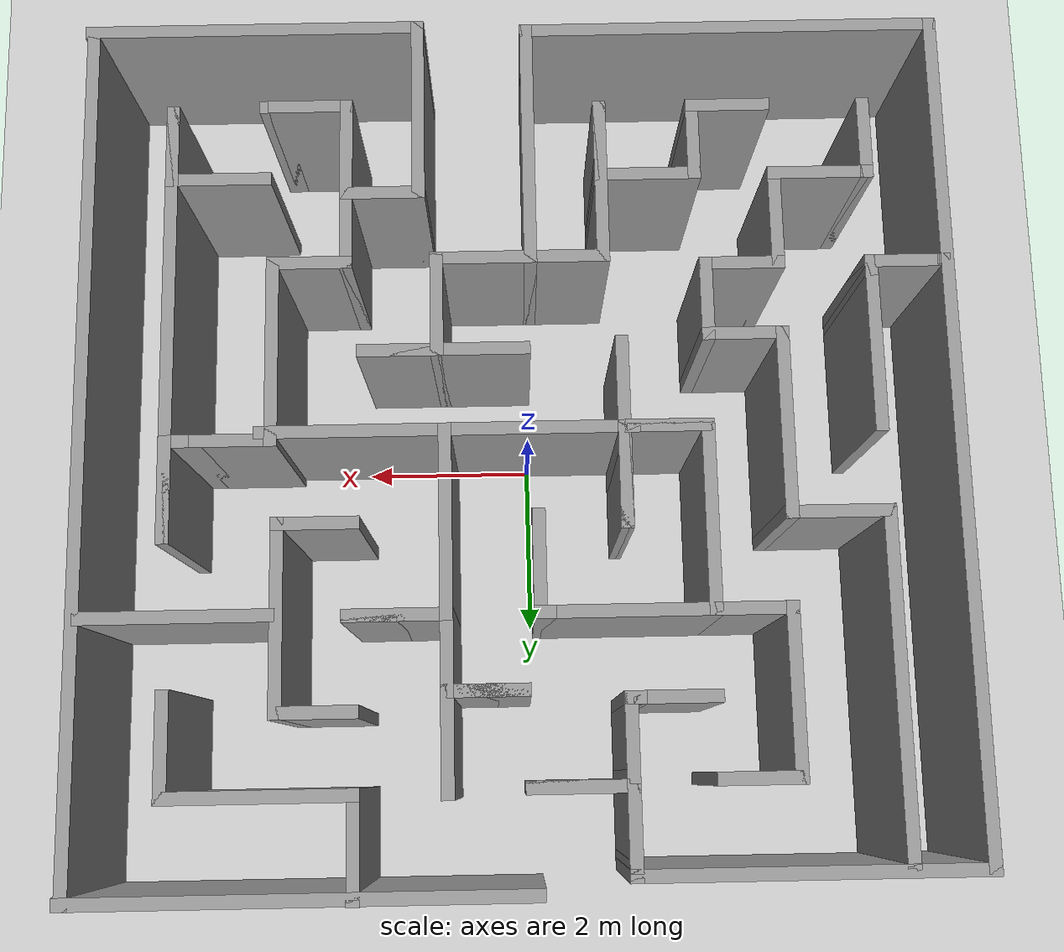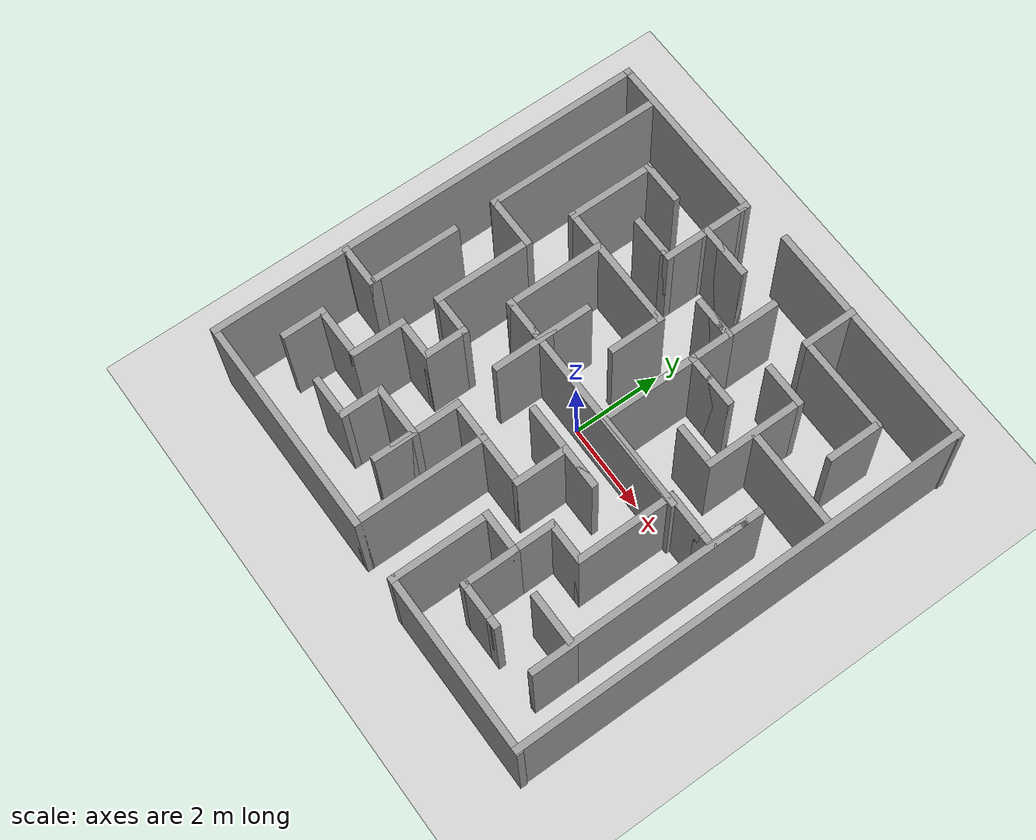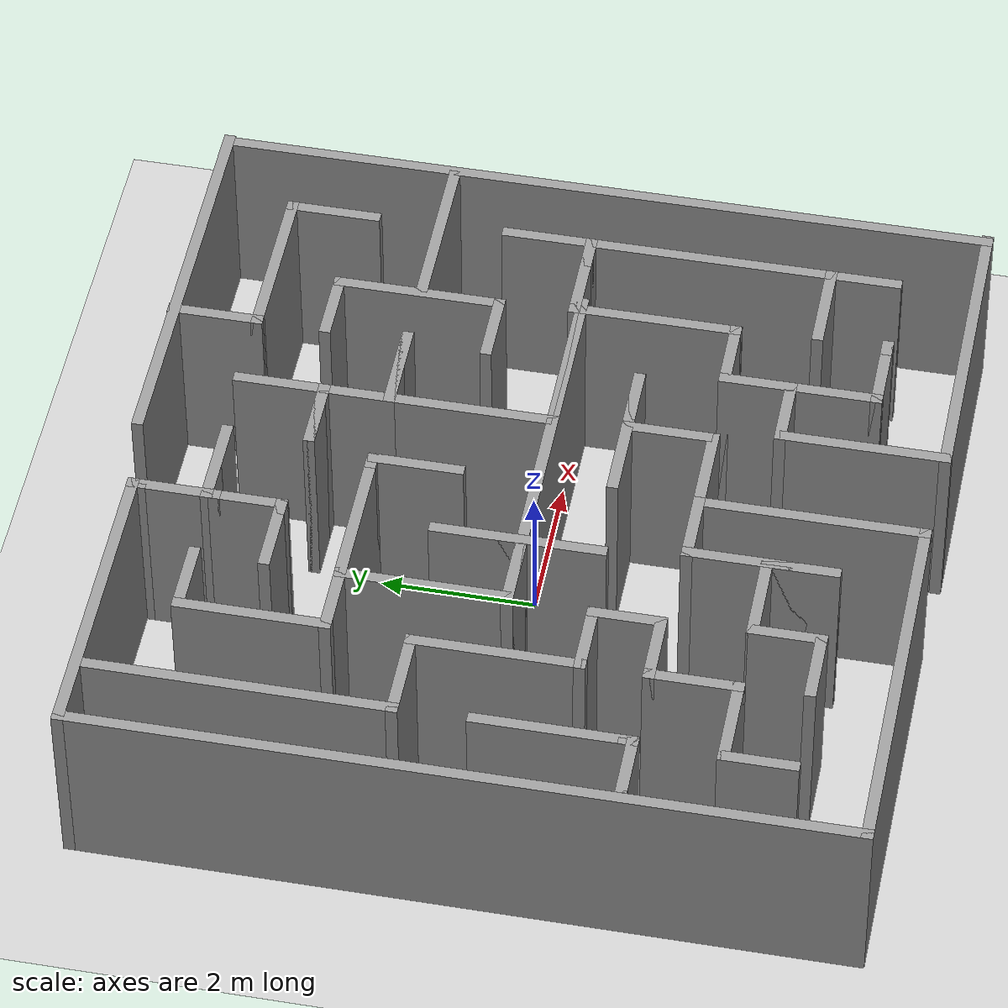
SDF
<sdf version="1.7">
 <world name="default">
  <light name="sun" type="directional">
   <pose>0 0 10 0 -0 0</pose>
   <diffuse>0.8 0.8 0.8 1</diffuse>
   <specular>0.2 0.2 0.2 1</specular>
   <attenuation>
    <range>1000</range>
    <constant>0.9</constant>
    <linear>0.01</linear>
    <quadratic>0.001</quadratic>
   </attenuation>
   <direction>-0.5 0.1 -0.9</direction>
   <spot><inner_angle>0</inner_angle><outer_angle>0</outer_angle><falloff>0</falloff></spot>
  </light>
  <model name="ground_plane">
   <static>1</static>
   <link name="link">
    <collision name="collision">
     <geometry><plane><normal>0 0 1</normal><size>100 100</size></plane></geometry>
     <surface><friction><ode><mu>100</mu><mu2>50</mu2></ode></friction></surface>
    </collision>
    <visual name="visual">
     <cast_shadows>0</cast_shadows>
     <geometry><plane><normal>0 0 1</normal><size>100 100</size></plane></geometry>
     <material>
      <script><uri>file://media/materials/scripts/gazebo.material</uri><name>Gazebo/Grey</name></script>
     </material>
    </visual>
   </link>
  </model>
  <gravity>0 0 -9.8</gravity>
  <magnetic_field>6e-06 2.3e-05 -4.2e-05</magnetic_field>
  <atmosphere type="adiabatic"/>
  <physics type="ode">
   <max_step_size>0.001</max_step_size>
   <real_time_factor>1</real_time_factor>
   <real_time_update_rate>1000</real_time_update_rate>
  </physics>
  <scene><ambient>0.4 0.4 0.4 1</ambient><background>0.7 0.7 0.7 1</background><shadows>1</shadows></scene>
  <audio><device>default</device></audio>
  <spherical_coordinates>
   <surface_model>EARTH_WGS84</surface_model>
   <latitude_deg>0</latitude_deg>
   <longitude_deg>0</longitude_deg>
   <elevation>0</elevation>
   <heading_deg>0</heading_deg>
  </spherical_coordinates>
  <model name="turtlebot3_maze">
   <pose>0.108086 0.039405 0 0 -0 0</pose>
   <link name="Wall_0">
    <collision name="Wall_0_Collision">
     <geometry><box><size>5.3029 0.15 2.5</size></box></geometry>
     <pose>0 0 1.25 0 -0 0</pose>
    </collision>
    <visual name="Wall_0_Visual">
     <pose>0 0 1.25 0 -0 0</pose>
     <geometry><box><size>5.3029 0.15 2.5</size></box></geometry>
     <material>
      <script><uri>file://media/materials/scripts/gazebo.material</uri><name>Gazebo/Grey</name></script>
      <ambient>1 1 1 1</ambient>
     </material>
     <meta><layer>0</layer></meta>
    </visual>
    <pose>2.45024 5.04418 0 0 -0 0</pose>
   </link>
   <link name="Wall_1">
    <collision name="Wall_1_Collision">
     <geometry><box><size>10.25 0.15 2.5</size></box></geometry>
     <pose>0 0 1.25 0 -0 0</pose>
    </collision>
    <visual name="Wall_1_Visual">
     <pose>0 0 1.25 0 -0 0</pose>
     <geometry><box><size>10.25 0.15 2.5</size></box></geometry>
     <material>
      <script><uri>file://media/materials/scripts/gazebo.material</uri><name>Gazebo/Grey</name></script>
      <ambient>1 1 1 1</ambient>
     </material>
     <meta><layer>0</layer></meta>
    </visual>
    <pose>5.00025 -0.005817 0 0 -0 -1.5708</pose>
   </link>
   <link name="Wall_10">
    <collision name="Wall_10_Collision">
     <geometry><box><size>1 0.15 2.5</size></box></geometry>
     <pose>0 0 1.25 0 -0 0</pose>
    </collision>
    <visual name="Wall_10_Visual">
     <pose>0 0 1.25 0 -0 0</pose>
     <geometry><box><size>1 0.15 2.5</size></box></geometry>
     <material>
      <script><uri>file://media/materials/scripts/gazebo.material</uri><name>Gazebo/Grey</name></script>
      <ambient>1 1 1 1</ambient>
     </material>
     <meta><layer>0</layer></meta>
    </visual>
    <pose>2.39879 -4.05582 0 0 -0 0</pose>
   </link>
   <link name="Wall_100">
    <collision name="Wall_100_Collision">
     <geometry><box><size>4 0.15 2.5</size></box></geometry>
     <pose>0 0 1.25 0 -0 0</pose>
    </collision>
    <visual name="Wall_100_Visual">
     <pose>0 0 1.25 0 -0 0</pose>
     <geometry><box><size>4 0.15 2.5</size></box></geometry>
     <material>
      <script><uri>file://media/materials/scripts/gazebo.material</uri><name>Gazebo/Grey</name></script>
      <ambient>1 1 1 1</ambient>
     </material>
     <meta><layer>0</layer></meta>
    </visual>
    <pose>-4.15984 2.86132 0 0 -0 1.5708</pose>
   </link>
   <link name="Wall_11">
    <collision name="Wall_11_Collision">
     <geometry><box><size>0.25 0.15 2.5</size></box></geometry>
     <pose>0 0 1.25 0 -0 0</pose>
    </collision>
    <visual name="Wall_11_Visual">
     <pose>0 0 1.25 0 -0 0</pose>
     <geometry><box><size>0.25 0.15 2.5</size></box></geometry>
     <material>
      <script><uri>file://media/materials/scripts/gazebo.material</uri><name>Gazebo/Grey</name></script>
      <ambient>1 1 1 1</ambient>
     </material>
     <meta><layer>0</layer></meta>
    </visual>
    <pose>2.8738 -4.05582 0 0 -0 0</pose>
   </link>
   <link name="Wall_13">
    <collision name="Wall_13_Collision">
     <geometry><box><size>1 0.15 2.5</size></box></geometry>
     <pose>0 0 1.25 0 -0 0</pose>
    </collision>
    <visual name="Wall_13_Visual">
     <pose>0 0 1.25 0 -0 0</pose>
     <geometry><box><size>1 0.15 2.5</size></box></geometry>
     <material>
      <script><uri>file://media/materials/scripts/gazebo.material</uri><name>Gazebo/Grey</name></script>
      <ambient>1 1 1 1</ambient>
     </material>
     <meta><layer>0</layer></meta>
    </visual>
    <pose>1.97379 -2.53082 0 0 -0 1.5708</pose>
   </link>
   <link name="Wall_14">
    <collision name="Wall_14_Collision">
     <geometry><box><size>1 0.15 2.5</size></box></geometry>
     <pose>0 0 1.25 0 -0 0</pose>
    </collision>
    <visual name="Wall_14_Visual">
     <pose>0 0 1.25 0 -0 0</pose>
     <geometry><box><size>1 0.15 2.5</size></box></geometry>
     <material>
      <script><uri>file://media/materials/scripts/gazebo.material</uri><name>Gazebo/Grey</name></script>
      <ambient>1 1 1 1</ambient>
     </material>
     <meta><layer>0</layer></meta>
    </visual>
    <pose>2.39879 -2.10582 0 0 -0 0</pose>
   </link>
   <link name="Wall_15">
    <collision name="Wall_15_Collision">
     <geometry><box><size>2.25 0.15 2.5</size></box></geometry>
     <pose>0 0 1.25 0 -0 0</pose>
    </collision>
    <visual name="Wall_15_Visual">
     <pose>0 0 1.25 0 -0 0</pose>
     <geometry><box><size>2.25 0.15 2.5</size></box></geometry>
     <material>
      <script><uri>file://media/materials/scripts/gazebo.material</uri><name>Gazebo/Grey</name></script>
      <ambient>1 1 1 1</ambient>
     </material>
     <meta><layer>0</layer></meta>
    </visual>
    <pose>2.8238 -1.05582 0 0 -0 1.5708</pose>
   </link>
   <link name="Wall_16">
    <collision name="Wall_16_Collision">
     <geometry><box><size>1 0.15 2.5</size></box></geometry>
     <pose>0 0 1.25 0 -0 0</pose>
    </collision>
    <visual name="Wall_16_Visual">
     <pose>0 0 1.25 0 -0 0</pose>
     <geometry><box><size>1 0.15 2.5</size></box></geometry>
     <material>
      <script><uri>file://media/materials/scripts/gazebo.material</uri><name>Gazebo/Grey</name></script>
      <ambient>1 1 1 1</ambient>
     </material>
     <meta><layer>0</layer></meta>
    </visual>
    <pose>3.2488 -0.005817 0 0 -0 0</pose>
   </link>
   <link name="Wall_17">
    <collision name="Wall_17_Collision">
     <geometry><box><size>0.5 0.15 2.5</size></box></geometry>
     <pose>0 0 1.25 0 -0 0</pose>
    </collision>
    <visual name="Wall_17_Visual">
     <pose>0 0 1.25 0 -0 0</pose>
     <geometry><box><size>0.5 0.15 2.5</size></box></geometry>
     <material>
      <script><uri>file://media/materials/scripts/gazebo.material</uri><name>Gazebo/Grey</name></script>
      <ambient>1 1 1 1</ambient>
     </material>
     <meta><layer>0</layer></meta>
    </visual>
    <pose>3.84879 -0.005817 0 0 -0 0</pose>
   </link>
   <link name="Wall_18">
    <collision name="Wall_18_Collision">
     <geometry><box><size>1.25 0.15 2.5</size></box></geometry>
     <pose>0 0 1.25 0 -0 0</pose>
    </collision>
    <visual name="Wall_18_Visual">
     <pose>0 0 1.25 0 -0 0</pose>
     <geometry><box><size>1.25 0.15 2.5</size></box></geometry>
     <material>
      <script><uri>file://media/materials/scripts/gazebo.material</uri><name>Gazebo/Grey</name></script>
      <ambient>1 1 1 1</ambient>
     </material>
     <meta><layer>0</layer></meta>
    </visual>
    <pose>4.0238 0.544183 0 0 -0 1.5708</pose>
   </link>
   <link name="Wall_19">
    <collision name="Wall_19_Collision">
     <geometry><box><size>5.25 0.15 2.5</size></box></geometry>
     <pose>0 0 1.25 0 -0 0</pose>
    </collision>
    <visual name="Wall_19_Visual">
     <pose>0 0 1.25 0 -0 0</pose>
     <geometry><box><size>5.25 0.15 2.5</size></box></geometry>
     <material>
      <script><uri>file://media/materials/scripts/gazebo.material</uri><name>Gazebo/Grey</name></script>
      <ambient>1 1 1 1</ambient>
     </material>
     <meta><layer>0</layer></meta>
    </visual>
    <pose>4.0238 -1.45582 0 0 -0 -1.5708</pose>
   </link>
   <link name="Wall_2">
    <collision name="Wall_2_Collision">
     <geometry><box><size>4.0529 0.15 2.5</size></box></geometry>
     <pose>0 0 1.25 0 -0 0</pose>
    </collision>
    <visual name="Wall_2_Visual">
     <pose>0 0 1.25 0 -0 0</pose>
     <geometry><box><size>4.0529 0.15 2.5</size></box></geometry>
     <material>
      <script><uri>file://media/materials/scripts/gazebo.material</uri><name>Gazebo/Grey</name></script>
      <ambient>1 1 1 1</ambient>
     </material>
     <meta><layer>0</layer></meta>
    </visual>
    <pose>3.07524 -5.05582 0 0 -0 3.14159</pose>
   </link>
   <link name="Wall_20">
    <collision name="Wall_20_Collision">
     <geometry><box><size>1 0.15 2.5</size></box></geometry>
     <pose>0 0 1.25 0 -0 0</pose>
    </collision>
    <visual name="Wall_20_Visual">
     <pose>0 0 1.25 0 -0 0</pose>
     <geometry><box><size>1 0.15 2.5</size></box></geometry>
     <material>
      <script><uri>file://media/materials/scripts/gazebo.material</uri><name>Gazebo/Grey</name></script>
      <ambient>1 1 1 1</ambient>
     </material>
     <meta><layer>0</layer></meta>
    </visual>
    <pose>4.0238 -3.58082 0 0 -0 1.5708</pose>
   </link>
   <link name="Wall_21">
    <collision name="Wall_21_Collision">
     <geometry><box><size>1.25 0.15 2.5</size></box></geometry>
     <pose>0 0 1.25 0 -0 0</pose>
    </collision>
    <visual name="Wall_21_Visual">
     <pose>0 0 1.25 0 -0 0</pose>
     <geometry><box><size>1.25 0.15 2.5</size></box></geometry>
     <material>
      <script><uri>file://media/materials/scripts/gazebo.material</uri><name>Gazebo/Grey</name></script>
      <ambient>1 1 1 1</ambient>
     </material>
     <meta><layer>0</layer></meta>
    </visual>
    <pose>3.47379 -3.15582 0 0 -0 3.14159</pose>
   </link>
   <link name="Wall_23">
    <collision name="Wall_23_Collision">
     <geometry><box><size>1.25 0.15 2.5</size></box></geometry>
     <pose>0 0 1.25 0 -0 0</pose>
    </collision>
    <visual name="Wall_23_Visual">
     <pose>0 0 1.25 0 -0 0</pose>
     <geometry><box><size>1.25 0.15 2.5</size></box></geometry>
     <material>
      <script><uri>file://media/materials/scripts/gazebo.material</uri><name>Gazebo/Grey</name></script>
      <ambient>1 1 1 1</ambient>
     </material>
     <meta><layer>0</layer></meta>
    </visual>
    <pose>1.87227 4.50582 0 0 -0 -1.5708</pose>
   </link>
   <link name="Wall_24">
    <collision name="Wall_24_Collision">
     <geometry><box><size>2.25 0.15 2.5</size></box></geometry>
     <pose>0 0 1.25 0 -0 0</pose>
    </collision>
    <visual name="Wall_24_Visual">
     <pose>0 0 1.25 0 -0 0</pose>
     <geometry><box><size>2.25 0.15 2.5</size></box></geometry>
     <material>
      <script><uri>file://media/materials/scripts/gazebo.material</uri><name>Gazebo/Grey</name></script>
      <ambient>1 1 1 1</ambient>
     </material>
     <meta><layer>0</layer></meta>
    </visual>
    <pose>2.92227 3.95582 0 0 -0 0</pose>
   </link>
   <link name="Wall_25">
    <collision name="Wall_25_Collision">
     <geometry><box><size>1.25 0.15 2.5</size></box></geometry>
     <pose>0 0 1.25 0 -0 0</pose>
    </collision>
    <visual name="Wall_25_Visual">
     <pose>0 0 1.25 0 -0 0</pose>
     <geometry><box><size>1.25 0.15 2.5</size></box></geometry>
     <material>
      <script><uri>file://media/materials/scripts/gazebo.material</uri><name>Gazebo/Grey</name></script>
      <ambient>1 1 1 1</ambient>
     </material>
     <meta><layer>0</layer></meta>
    </visual>
    <pose>3.97227 3.40582 0 0 -0 -1.5708</pose>
   </link>
   <link name="Wall_27">
    <collision name="Wall_27_Collision">
     <geometry><box><size>2.25 0.15 2.5</size></box></geometry>
     <pose>0 0 1.25 0 -0 0</pose>
    </collision>
    <visual name="Wall_27_Visual">
     <pose>0 0 1.25 0 -0 0</pose>
     <geometry><box><size>2.25 0.15 2.5</size></box></geometry>
     <material>
      <script><uri>file://media/materials/scripts/gazebo.material</uri><name>Gazebo/Grey</name></script>
      <ambient>1 1 1 1</ambient>
     </material>
     <meta><layer>0</layer></meta>
    </visual>
    <pose>3.87447 1.98762 0 0 -0 0</pose>
   </link>
   <link name="Wall_3">
    <collision name="Wall_3_Collision">
     <geometry><box><size>2.25 0.15 2.5</size></box></geometry>
     <pose>0 0 1.25 0 -0 0</pose>
    </collision>
    <visual name="Wall_3_Visual">
     <pose>0 0 1.25 0 -0 0</pose>
     <geometry><box><size>2.25 0.15 2.5</size></box></geometry>
     <material>
      <script><uri>file://media/materials/scripts/gazebo.material</uri><name>Gazebo/Grey</name></script>
      <ambient>1 1 1 1</ambient>
     </material>
     <meta><layer>0</layer></meta>
    </visual>
    <pose>1.1238 -4.00582 0 0 -0 1.5708</pose>
   </link>
   <link name="Wall_31">
    <collision name="Wall_31_Collision">
     <geometry><box><size>1 0.15 2.5</size></box></geometry>
     <pose>0 0 1.25 0 -0 0</pose>
    </collision>
    <visual name="Wall_31_Visual">
     <pose>0 0 1.25 0 -0 0</pose>
     <geometry><box><size>1 0.15 2.5</size></box></geometry>
     <material>
      <script><uri>file://media/materials/scripts/gazebo.material</uri><name>Gazebo/Grey</name></script>
      <ambient>1 1 1 1</ambient>
     </material>
     <meta><layer>0</layer></meta>
    </visual>
    <pose>2.31134 0.963107 0 0 -0 0</pose>
   </link>
   <link name="Wall_33">
    <collision name="Wall_33_Collision">
     <geometry><box><size>2.25 0.15 2.5</size></box></geometry>
     <pose>0 0 1.25 0 -0 0</pose>
    </collision>
    <visual name="Wall_33_Visual">
     <pose>0 0 1.25 0 -0 0</pose>
     <geometry><box><size>2.25 0.15 2.5</size></box></geometry>
     <material>
      <script><uri>file://media/materials/scripts/gazebo.material</uri><name>Gazebo/Grey</name></script>
      <ambient>1 1 1 1</ambient>
     </material>
     <meta><layer>0</layer></meta>
    </visual>
    <pose>2.73634 2.01311 0 0 -0 1.5708</pose>
   </link>
   <link name="Wall_34">
    <collision name="Wall_34_Collision">
     <geometry><box><size>1 0.15 2.5</size></box></geometry>
     <pose>0 0 1.25 0 -0 0</pose>
    </collision>
    <visual name="Wall_34_Visual">
     <pose>0 0 1.25 0 -0 0</pose>
     <geometry><box><size>1 0.15 2.5</size></box></geometry>
     <material>
      <script><uri>file://media/materials/scripts/gazebo.material</uri><name>Gazebo/Grey</name></script>
      <ambient>1 1 1 1</ambient>
     </material>
     <meta><layer>0</layer></meta>
    </visual>
    <pose>2.31134 3.06311 0 0 -0 3.14159</pose>
   </link>
   <link name="Wall_37">
    <collision name="Wall_37_Collision">
     <geometry><box><size>1.25 0.15 2.5</size></box></geometry>
     <pose>0 0 1.25 0 -0 0</pose>
    </collision>
    <visual name="Wall_37_Visual">
     <pose>0 0 1.25 0 -0 0</pose>
     <geometry><box><size>1.25 0.15 2.5</size></box></geometry>
     <material>
      <script><uri>file://media/materials/scripts/gazebo.material</uri><name>Gazebo/Grey</name></script>
      <ambient>1 1 1 1</ambient>
     </material>
     <meta><layer>0</layer></meta>
    </visual>
    <pose>0.843747 3.40897 0 0 -0 -1.5708</pose>
   </link>
   <link name="Wall_38">
    <collision name="Wall_38_Collision">
     <geometry><box><size>1 0.15 2.5</size></box></geometry>
     <pose>0 0 1.25 0 -0 0</pose>
    </collision>
    <visual name="Wall_38_Visual">
     <pose>0 0 1.25 0 -0 0</pose>
     <geometry><box><size>1 0.15 2.5</size></box></geometry>
     <material>
      <script><uri>file://media/materials/scripts/gazebo.material</uri><name>Gazebo/Grey</name></script>
      <ambient>1 1 1 1</ambient>
     </material>
     <meta><layer>0</layer></meta>
    </visual>
    <pose>0.418747 2.85898 0 0 -0 3.14159</pose>
   </link>
   <link name="Wall_39">
    <collision name="Wall_39_Collision">
     <geometry><box><size>1 0.15 2.5</size></box></geometry>
     <pose>0 0 1.25 0 -0 0</pose>
    </collision>
    <visual name="Wall_39_Visual">
     <pose>0 0 1.25 0 -0 0</pose>
     <geometry><box><size>1 0.15 2.5</size></box></geometry>
     <material>
      <script><uri>file://media/materials/scripts/gazebo.material</uri><name>Gazebo/Grey</name></script>
      <ambient>1 1 1 1</ambient>
     </material>
     <meta><layer>0</layer></meta>
    </visual>
    <pose>0.418747 2.85898 0 0 -0 0</pose>
   </link>
   <link name="Wall_4">
    <collision name="Wall_4_Collision">
     <geometry><box><size>1 0.15 2.5</size></box></geometry>
     <pose>0 0 1.25 0 -0 0</pose>
    </collision>
    <visual name="Wall_4_Visual">
     <pose>0 0 1.25 0 -0 0</pose>
     <geometry><box><size>1 0.15 2.5</size></box></geometry>
     <material>
      <script><uri>file://media/materials/scripts/gazebo.material</uri><name>Gazebo/Grey</name></script>
      <ambient>1 1 1 1</ambient>
     </material>
     <meta><layer>0</layer></meta>
    </visual>
    <pose>1.54879 -2.95582 0 0 -0 0</pose>
   </link>
   <link name="Wall_40">
    <collision name="Wall_40_Collision">
     <geometry><box><size>1 0.15 2.5</size></box></geometry>
     <pose>0 0 1.25 0 -0 0</pose>
    </collision>
    <visual name="Wall_40_Visual">
     <pose>0 0 1.25 0 -0 0</pose>
     <geometry><box><size>1 0.15 2.5</size></box></geometry>
     <material>
      <script><uri>file://media/materials/scripts/gazebo.material</uri><name>Gazebo/Grey</name></script>
      <ambient>1 1 1 1</ambient>
     </material>
     <meta><layer>0</layer></meta>
    </visual>
    <pose>0.843747 2.43398 0 0 -0 -1.5708</pose>
   </link>
   <link name="Wall_41">
    <collision name="Wall_41_Collision">
     <geometry><box><size>1.25 0.15 2.5</size></box></geometry>
     <pose>0 0 1.25 0 -0 0</pose>
    </collision>
    <visual name="Wall_41_Visual">
     <pose>0 0 1.25 0 -0 0</pose>
     <geometry><box><size>1.25 0.15 2.5</size></box></geometry>
     <material>
      <script><uri>file://media/materials/scripts/gazebo.material</uri><name>Gazebo/Grey</name></script>
      <ambient>1 1 1 1</ambient>
     </material>
     <meta><layer>0</layer></meta>
    </visual>
    <pose>1.39375 2.00898 0 0 -0 0</pose>
   </link>
   <link name="Wall_42">
    <collision name="Wall_42_Collision">
     <geometry><box><size>1.25 0.15 2.5</size></box></geometry>
     <pose>0 0 1.25 0 -0 0</pose>
    </collision>
    <visual name="Wall_42_Visual">
     <pose>0 0 1.25 0 -0 0</pose>
     <geometry><box><size>1.25 0.15 2.5</size></box></geometry>
     <material>
      <script><uri>file://media/materials/scripts/gazebo.material</uri><name>Gazebo/Grey</name></script>
      <ambient>1 1 1 1</ambient>
     </material>
     <meta><layer>0</layer></meta>
    </visual>
    <pose>1.39375 2.00898 0 0 -0 3.14159</pose>
   </link>
   <link name="Wall_43">
    <collision name="Wall_43_Collision">
     <geometry><box><size>2.25 0.15 2.5</size></box></geometry>
     <pose>0 0 1.25 0 -0 0</pose>
    </collision>
    <visual name="Wall_43_Visual">
     <pose>0 0 1.25 0 -0 0</pose>
     <geometry><box><size>2.25 0.15 2.5</size></box></geometry>
     <material>
      <script><uri>file://media/materials/scripts/gazebo.material</uri><name>Gazebo/Grey</name></script>
      <ambient>1 1 1 1</ambient>
     </material>
     <meta><layer>0</layer></meta>
    </visual>
    <pose>0.843747 0.958975 0 0 -0 -1.5708</pose>
   </link>
   <link name="Wall_44">
    <collision name="Wall_44_Collision">
     <geometry><box><size>2.25 0.15 2.5</size></box></geometry>
     <pose>0 0 1.25 0 -0 0</pose>
    </collision>
    <visual name="Wall_44_Visual">
     <pose>0 0 1.25 0 -0 0</pose>
     <geometry><box><size>2.25 0.15 2.5</size></box></geometry>
     <material>
      <script><uri>file://media/materials/scripts/gazebo.material</uri><name>Gazebo/Grey</name></script>
      <ambient>1 1 1 1</ambient>
     </material>
     <meta><layer>0</layer></meta>
    </visual>
    <pose>1.89375 -0.091025 0 0 -0 0</pose>
   </link>
   <link name="Wall_45">
    <collision name="Wall_45_Collision">
     <geometry><box><size>5.25 0.15 2.5</size></box></geometry>
     <pose>0 0 1.25 0 -0 0</pose>
    </collision>
    <visual name="Wall_45_Visual">
     <pose>0 0 1.25 0 -0 0</pose>
     <geometry><box><size>5.25 0.15 2.5</size></box></geometry>
     <material>
      <script><uri>file://media/materials/scripts/gazebo.material</uri><name>Gazebo/Grey</name></script>
      <ambient>1 1 1 1</ambient>
     </material>
     <meta><layer>0</layer></meta>
    </visual>
    <pose>0.393747 -0.091025 0 0 -0 3.14159</pose>
   </link>
   <link name="Wall_46">
    <collision name="Wall_46_Collision">
     <geometry><box><size>1 0.15 2.5</size></box></geometry>
     <pose>0 0 1.25 0 -0 0</pose>
    </collision>
    <visual name="Wall_46_Visual">
     <pose>0 0 1.25 0 -0 0</pose>
     <geometry><box><size>1 0.15 2.5</size></box></geometry>
     <material>
      <script><uri>file://media/materials/scripts/gazebo.material</uri><name>Gazebo/Grey</name></script>
      <ambient>1 1 1 1</ambient>
     </material>
     <meta><layer>0</layer></meta>
    </visual>
    <pose>-1.73125 -0.091025 0 0 -0 0</pose>
   </link>
   <link name="Wall_47">
    <collision name="Wall_47_Collision">
     <geometry><box><size>0.25 0.15 2.5</size></box></geometry>
     <pose>0 0 1.25 0 -0 0</pose>
    </collision>
    <visual name="Wall_47_Visual">
     <pose>0 0 1.25 0 -0 0</pose>
     <geometry><box><size>0.25 0.15 2.5</size></box></geometry>
     <material>
      <script><uri>file://media/materials/scripts/gazebo.material</uri><name>Gazebo/Grey</name></script>
      <ambient>1 1 1 1</ambient>
     </material>
     <meta><layer>0</layer></meta>
    </visual>
    <pose>-1.25625 -0.091025 0 0 -0 0</pose>
   </link>
   <link name="Wall_48">
    <collision name="Wall_48_Collision">
     <geometry><box><size>1.25 0.15 2.5</size></box></geometry>
     <pose>0 0 1.25 0 -0 0</pose>
    </collision>
    <visual name="Wall_48_Visual">
     <pose>0 0 1.25 0 -0 0</pose>
     <geometry><box><size>1.25 0.15 2.5</size></box></geometry>
     <material>
      <script><uri>file://media/materials/scripts/gazebo.material</uri><name>Gazebo/Grey</name></script>
      <ambient>1 1 1 1</ambient>
     </material>
     <meta><layer>0</layer></meta>
    </visual>
    <pose>-1.20625 0.458975 0 0 -0 1.5708</pose>
   </link>
   <link name="Wall_49">
    <collision name="Wall_49_Collision">
     <geometry><box><size>2.25 0.15 2.5</size></box></geometry>
     <pose>0 0 1.25 0 -0 0</pose>
    </collision>
    <visual name="Wall_49_Visual">
     <pose>0 0 1.25 0 -0 0</pose>
     <geometry><box><size>2.25 0.15 2.5</size></box></geometry>
     <material>
      <script><uri>file://media/materials/scripts/gazebo.material</uri><name>Gazebo/Grey</name></script>
      <ambient>1 1 1 1</ambient>
     </material>
     <meta><layer>0</layer></meta>
    </visual>
    <pose>-1.20625 -0.041025 0 0 -0 -1.5708</pose>
   </link>
   <link name="Wall_51">
    <collision name="Wall_51_Collision">
     <geometry><box><size>2.25 0.15 2.5</size></box></geometry>
     <pose>0 0 1.25 0 -0 0</pose>
    </collision>
    <visual name="Wall_51_Visual">
     <pose>0 0 1.25 0 -0 0</pose>
     <geometry><box><size>2.25 0.15 2.5</size></box></geometry>
     <material>
      <script><uri>file://media/materials/scripts/gazebo.material</uri><name>Gazebo/Grey</name></script>
      <ambient>1 1 1 1</ambient>
     </material>
     <meta><layer>0</layer></meta>
    </visual>
    <pose>-2.15625 0.958975 0 0 -0 1.5708</pose>
   </link>
   <link name="Wall_52">
    <collision name="Wall_52_Collision">
     <geometry><box><size>2 0.15 2.5</size></box></geometry>
     <pose>0 0 1.25 0 -0 0</pose>
    </collision>
    <visual name="Wall_52_Visual">
     <pose>0 0 1.25 0 -0 0</pose>
     <geometry><box><size>2 0.15 2.5</size></box></geometry>
     <material>
      <script><uri>file://media/materials/scripts/gazebo.material</uri><name>Gazebo/Grey</name></script>
      <ambient>1 1 1 1</ambient>
     </material>
     <meta><layer>0</layer></meta>
    </visual>
    <pose>-1.23125 2.00898 0 0 -0 0</pose>
   </link>
   <link name="Wall_53">
    <collision name="Wall_53_Collision">
     <geometry><box><size>0.25 0.15 2.5</size></box></geometry>
     <pose>0 0 1.25 0 -0 0</pose>
    </collision>
    <visual name="Wall_53_Visual">
     <pose>0 0 1.25 0 -0 0</pose>
     <geometry><box><size>0.25 0.15 2.5</size></box></geometry>
     <material>
      <script><uri>file://media/materials/scripts/gazebo.material</uri><name>Gazebo/Grey</name></script>
      <ambient>1 1 1 1</ambient>
     </material>
     <meta><layer>0</layer></meta>
    </visual>
    <pose>-0.256253 2.00898 0 0 -0 0</pose>
   </link>
   <link name="Wall_54">
    <collision name="Wall_54_Collision">
     <geometry><box><size>1.25 0.15 2.5</size></box></geometry>
     <pose>0 0 1.25 0 -0 0</pose>
    </collision>
    <visual name="Wall_54_Visual">
     <pose>0 0 1.25 0 -0 0</pose>
     <geometry><box><size>1.25 0.15 2.5</size></box></geometry>
     <material>
      <script><uri>file://media/materials/scripts/gazebo.material</uri><name>Gazebo/Grey</name></script>
      <ambient>1 1 1 1</ambient>
     </material>
     <meta><layer>0</layer></meta>
    </visual>
    <pose>-0.206253 1.45897 0 0 -0 -1.5708</pose>
   </link>
   <link name="Wall_56">
    <collision name="Wall_56_Collision">
     <geometry><box><size>1 0.15 2.5</size></box></geometry>
     <pose>0 0 1.25 0 -0 0</pose>
    </collision>
    <visual name="Wall_56_Visual">
     <pose>0 0 1.25 0 -0 0</pose>
     <geometry><box><size>1 0.15 2.5</size></box></geometry>
     <material>
      <script><uri>file://media/materials/scripts/gazebo.material</uri><name>Gazebo/Grey</name></script>
      <ambient>1 1 1 1</ambient>
     </material>
     <meta><layer>0</layer></meta>
    </visual>
    <pose>-2.58125 2.00898 0 0 -0 3.14159</pose>
   </link>
   <link name="Wall_57">
    <collision name="Wall_57_Collision">
     <geometry><box><size>2 0.15 2.5</size></box></geometry>
     <pose>0 0 1.25 0 -0 0</pose>
    </collision>
    <visual name="Wall_57_Visual">
     <pose>0 0 1.25 0 -0 0</pose>
     <geometry><box><size>2 0.15 2.5</size></box></geometry>
     <material>
      <script><uri>file://media/materials/scripts/gazebo.material</uri><name>Gazebo/Grey</name></script>
      <ambient>1 1 1 1</ambient>
     </material>
     <meta><layer>0</layer></meta>
    </visual>
    <pose>-3.00625 2.93398 0 0 -0 1.5708</pose>
   </link>
   <link name="Wall_58">
    <collision name="Wall_58_Collision">
     <geometry><box><size>1 0.15 2.5</size></box></geometry>
     <pose>0 0 1.25 0 -0 0</pose>
    </collision>
    <visual name="Wall_58_Visual">
     <pose>0 0 1.25 0 -0 0</pose>
     <geometry><box><size>1 0.15 2.5</size></box></geometry>
     <material>
      <script><uri>file://media/materials/scripts/gazebo.material</uri><name>Gazebo/Grey</name></script>
      <ambient>1 1 1 1</ambient>
     </material>
     <meta><layer>0</layer></meta>
    </visual>
    <pose>-2.58125 3.85898 0 0 -0 0</pose>
   </link>
   <link name="Wall_60">
    <collision name="Wall_60_Collision">
     <geometry><box><size>1 0.15 2.5</size></box></geometry>
     <pose>0 0 1.25 0 -0 0</pose>
    </collision>
    <visual name="Wall_60_Visual">
     <pose>0 0 1.25 0 -0 0</pose>
     <geometry><box><size>1 0.15 2.5</size></box></geometry>
     <material>
      <script><uri>file://media/materials/scripts/gazebo.material</uri><name>Gazebo/Grey</name></script>
      <ambient>1 1 1 1</ambient>
     </material>
     <meta><layer>0</layer></meta>
    </visual>
    <pose>-1.70169 2.96559 0 0 -0 0</pose>
   </link>
   <link name="Wall_61">
    <collision name="Wall_61_Collision">
     <geometry><box><size>0.25 0.15 2.5</size></box></geometry>
     <pose>0 0 1.25 0 -0 0</pose>
    </collision>
    <visual name="Wall_61_Visual">
     <pose>0 0 1.25 0 -0 0</pose>
     <geometry><box><size>0.25 0.15 2.5</size></box></geometry>
     <material>
      <script><uri>file://media/materials/scripts/gazebo.material</uri><name>Gazebo/Grey</name></script>
      <ambient>1 1 1 1</ambient>
     </material>
     <meta><layer>0</layer></meta>
    </visual>
    <pose>-1.22669 2.96559 0 0 -0 0</pose>
   </link>
   <link name="Wall_62">
    <collision name="Wall_62_Collision">
     <geometry><box><size>1 0.15 2.5</size></box></geometry>
     <pose>0 0 1.25 0 -0 0</pose>
    </collision>
    <visual name="Wall_62_Visual">
     <pose>0 0 1.25 0 -0 0</pose>
     <geometry><box><size>1 0.15 2.5</size></box></geometry>
     <material>
      <script><uri>file://media/materials/scripts/gazebo.material</uri><name>Gazebo/Grey</name></script>
      <ambient>1 1 1 1</ambient>
     </material>
     <meta><layer>0</layer></meta>
    </visual>
    <pose>-1.1767 3.39059 0 0 -0 1.5708</pose>
   </link>
   <link name="Wall_63">
    <collision name="Wall_63_Collision">
     <geometry><box><size>0.25 0.15 2.5</size></box></geometry>
     <pose>0 0 1.25 0 -0 0</pose>
    </collision>
    <visual name="Wall_63_Visual">
     <pose>0 0 1.25 0 -0 0</pose>
     <geometry><box><size>0.25 0.15 2.5</size></box></geometry>
     <material>
      <script><uri>file://media/materials/scripts/gazebo.material</uri><name>Gazebo/Grey</name></script>
      <ambient>1 1 1 1</ambient>
     </material>
     <meta><layer>0</layer></meta>
    </visual>
    <pose>-1.1767 3.86559 0 0 -0 1.5708</pose>
   </link>
   <link name="Wall_64">
    <collision name="Wall_64_Collision">
     <geometry><box><size>1.25 0.15 2.5</size></box></geometry>
     <pose>0 0 1.25 0 -0 0</pose>
    </collision>
    <visual name="Wall_64_Visual">
     <pose>0 0 1.25 0 -0 0</pose>
     <geometry><box><size>1.25 0.15 2.5</size></box></geometry>
     <material>
      <script><uri>file://media/materials/scripts/gazebo.material</uri><name>Gazebo/Grey</name></script>
      <ambient>1 1 1 1</ambient>
     </material>
     <meta><layer>0</layer></meta>
    </visual>
    <pose>-0.626695 3.91559 0 0 -0 0</pose>
   </link>
   <link name="Wall_65">
    <collision name="Wall_65_Collision">
     <geometry><box><size>1.25 0.15 2.5</size></box></geometry>
     <pose>0 0 1.25 0 -0 0</pose>
    </collision>
    <visual name="Wall_65_Visual">
     <pose>0 0 1.25 0 -0 0</pose>
     <geometry><box><size>1.25 0.15 2.5</size></box></geometry>
     <material>
      <script><uri>file://media/materials/scripts/gazebo.material</uri><name>Gazebo/Grey</name></script>
      <ambient>1 1 1 1</ambient>
     </material>
     <meta><layer>0</layer></meta>
    </visual>
    <pose>-0.626695 3.91559 0 0 -0 3.14159</pose>
   </link>
   <link name="Wall_66">
    <collision name="Wall_66_Collision">
     <geometry><box><size>1 0.15 2.5</size></box></geometry>
     <pose>0 0 1.25 0 -0 0</pose>
    </collision>
    <visual name="Wall_66_Visual">
     <pose>0 0 1.25 0 -0 0</pose>
     <geometry><box><size>1 0.15 2.5</size></box></geometry>
     <material>
      <script><uri>file://media/materials/scripts/gazebo.material</uri><name>Gazebo/Grey</name></script>
      <ambient>1 1 1 1</ambient>
     </material>
     <meta><layer>0</layer></meta>
    </visual>
    <pose>-1.1767 4.34059 0 0 -0 1.5708</pose>
   </link>
   <link name="Wall_69">
    <collision name="Wall_69_Collision">
     <geometry><box><size>0.25 0.15 2.5</size></box></geometry>
     <pose>0 0 1.25 0 -0 0</pose>
    </collision>
    <visual name="Wall_69_Visual">
     <pose>0 0 1.25 0 -0 0</pose>
     <geometry><box><size>0.25 0.15 2.5</size></box></geometry>
     <material>
      <script><uri>file://media/materials/scripts/gazebo.material</uri><name>Gazebo/Grey</name></script>
      <ambient>1 1 1 1</ambient>
     </material>
     <meta><layer>0</layer></meta>
    </visual>
    <pose>-1.1767 4.81559 0 0 -0 1.5708</pose>
   </link>
   <link name="Wall_70">
    <collision name="Wall_70_Collision">
     <geometry><box><size>4 0.15 2.5</size></box></geometry>
     <pose>0 0 1.25 0 -0 0</pose>
    </collision>
    <visual name="Wall_70_Visual">
     <pose>0 0 1.25 0 -0 0</pose>
     <geometry><box><size>4 0.15 2.5</size></box></geometry>
     <material>
      <script><uri>file://media/materials/scripts/gazebo.material</uri><name>Gazebo/Grey</name></script>
      <ambient>1 1 1 1</ambient>
     </material>
     <meta><layer>0</layer></meta>
    </visual>
    <pose>-3.10169 4.86559 0 0 -0 3.14159</pose>
   </link>
   <link name="Wall_71">
    <collision name="Wall_71_Collision">
     <geometry><box><size>10 0.15 2.5</size></box></geometry>
     <pose>0 0 1.25 0 -0 0</pose>
    </collision>
    <visual name="Wall_71_Visual">
     <pose>0 0 1.25 0 -0 0</pose>
     <geometry><box><size>10 0.15 2.5</size></box></geometry>
     <material>
      <script><uri>file://media/materials/scripts/gazebo.material</uri><name>Gazebo/Grey</name></script>
      <ambient>1 1 1 1</ambient>
     </material>
     <meta><layer>0</layer></meta>
    </visual>
    <pose>-5.02669 -0.059409 0 0 -0 -1.5708</pose>
   </link>
   <link name="Wall_72">
    <collision name="Wall_72_Collision">
     <geometry><box><size>5 0.15 2.5</size></box></geometry>
     <pose>0 0 1.25 0 -0 0</pose>
    </collision>
    <visual name="Wall_72_Visual">
     <pose>0 0 1.25 0 -0 0</pose>
     <geometry><box><size>5 0.15 2.5</size></box></geometry>
     <material>
      <script><uri>file://media/materials/scripts/gazebo.material</uri><name>Gazebo/Grey</name></script>
      <ambient>1 1 1 1</ambient>
     </material>
     <meta><layer>0</layer></meta>
    </visual>
    <pose>-2.60169 -4.98441 0 0 -0 0</pose>
   </link>
   <link name="Wall_73">
    <collision name="Wall_73_Collision">
     <geometry><box><size>3 0.15 2.5</size></box></geometry>
     <pose>0 0 1.25 0 -0 0</pose>
    </collision>
    <visual name="Wall_73_Visual">
     <pose>0 0 1.25 0 -0 0</pose>
     <geometry><box><size>3 0.15 2.5</size></box></geometry>
     <material>
      <script><uri>file://media/materials/scripts/gazebo.material</uri><name>Gazebo/Grey</name></script>
      <ambient>1 1 1 1</ambient>
     </material>
     <meta><layer>0</layer></meta>
    </visual>
    <pose>-0.176695 -3.55941 0 0 -0 1.5708</pose>
   </link>
   <link name="Wall_74">
    <collision name="Wall_74_Collision">
     <geometry><box><size>1.25 0.15 2.5</size></box></geometry>
     <pose>0 0 1.25 0 -0 0</pose>
    </collision>
    <visual name="Wall_74_Visual">
     <pose>0 0 1.25 0 -0 0</pose>
     <geometry><box><size>1.25 0.15 2.5</size></box></geometry>
     <material>
      <script><uri>file://media/materials/scripts/gazebo.material</uri><name>Gazebo/Grey</name></script>
      <ambient>1 1 1 1</ambient>
     </material>
     <meta><layer>0</layer></meta>
    </visual>
    <pose>0.373305 -2.13441 0 0 -0 0</pose>
   </link>
   <link name="Wall_75">
    <collision name="Wall_75_Collision">
     <geometry><box><size>1.25 0.15 2.5</size></box></geometry>
     <pose>0 0 1.25 0 -0 0</pose>
    </collision>
    <visual name="Wall_75_Visual">
     <pose>0 0 1.25 0 -0 0</pose>
     <geometry><box><size>1.25 0.15 2.5</size></box></geometry>
     <material>
      <script><uri>file://media/materials/scripts/gazebo.material</uri><name>Gazebo/Grey</name></script>
      <ambient>1 1 1 1</ambient>
     </material>
     <meta><layer>0</layer></meta>
    </visual>
    <pose>0.923306 -1.58441 0 0 -0 1.5708</pose>
   </link>
   <link name="Wall_76">
    <collision name="Wall_76_Collision">
     <geometry><box><size>1 0.15 2.5</size></box></geometry>
     <pose>0 0 1.25 0 -0 0</pose>
    </collision>
    <visual name="Wall_76_Visual">
     <pose>0 0 1.25 0 -0 0</pose>
     <geometry><box><size>1 0.15 2.5</size></box></geometry>
     <material>
      <script><uri>file://media/materials/scripts/gazebo.material</uri><name>Gazebo/Grey</name></script>
      <ambient>1 1 1 1</ambient>
     </material>
     <meta><layer>0</layer></meta>
    </visual>
    <pose>1.34831 -1.03441 0 0 -0 0</pose>
   </link>
   <link name="Wall_77">
    <collision name="Wall_77_Collision">
     <geometry><box><size>2 0.15 2.5</size></box></geometry>
     <pose>0 0 1.25 0 -0 0</pose>
    </collision>
    <visual name="Wall_77_Visual">
     <pose>0 0 1.25 0 -0 0</pose>
     <geometry><box><size>2 0.15 2.5</size></box></geometry>
     <material>
      <script><uri>file://media/materials/scripts/gazebo.material</uri><name>Gazebo/Grey</name></script>
      <ambient>1 1 1 1</ambient>
     </material>
     <meta><layer>0</layer></meta>
    </visual>
    <pose>0.848305 -1.03441 0 0 -0 3.14159</pose>
   </link>
   <link name="Wall_79">
    <collision name="Wall_79_Collision">
     <geometry><box><size>1 0.15 2.5</size></box></geometry>
     <pose>0 0 1.25 0 -0 0</pose>
    </collision>
    <visual name="Wall_79_Visual">
     <pose>0 0 1.25 0 -0 0</pose>
     <geometry><box><size>1 0.15 2.5</size></box></geometry>
     <material>
      <script><uri>file://media/materials/scripts/gazebo.material</uri><name>Gazebo/Grey</name></script>
      <ambient>1 1 1 1</ambient>
     </material>
     <meta><layer>0</layer></meta>
    </visual>
    <pose>-0.601695 -2.13441 0 0 -0 3.14159</pose>
   </link>
   <link name="Wall_80">
    <collision name="Wall_80_Collision">
     <geometry><box><size>2 0.15 2.5</size></box></geometry>
     <pose>0 0 1.25 0 -0 0</pose>
    </collision>
    <visual name="Wall_80_Visual">
     <pose>0 0 1.25 0 -0 0</pose>
     <geometry><box><size>2 0.15 2.5</size></box></geometry>
     <material>
      <script><uri>file://media/materials/scripts/gazebo.material</uri><name>Gazebo/Grey</name></script>
      <ambient>1 1 1 1</ambient>
     </material>
     <meta><layer>0</layer></meta>
    </visual>
    <pose>-1.02669 -3.05941 0 0 -0 -1.5708</pose>
   </link>
   <link name="Wall_81">
    <collision name="Wall_81_Collision">
     <geometry><box><size>1 0.15 2.5</size></box></geometry>
     <pose>0 0 1.25 0 -0 0</pose>
    </collision>
    <visual name="Wall_81_Visual">
     <pose>0 0 1.25 0 -0 0</pose>
     <geometry><box><size>1 0.15 2.5</size></box></geometry>
     <material>
      <script><uri>file://media/materials/scripts/gazebo.material</uri><name>Gazebo/Grey</name></script>
      <ambient>1 1 1 1</ambient>
     </material>
     <meta><layer>0</layer></meta>
    </visual>
    <pose>-1.02669 -3.55941 0 0 -0 1.5708</pose>
   </link>
   <link name="Wall_82">
    <collision name="Wall_82_Collision">
     <geometry><box><size>1.25 0.15 2.5</size></box></geometry>
     <pose>0 0 1.25 0 -0 0</pose>
    </collision>
    <visual name="Wall_82_Visual">
     <pose>0 0 1.25 0 -0 0</pose>
     <geometry><box><size>1.25 0.15 2.5</size></box></geometry>
     <material>
      <script><uri>file://media/materials/scripts/gazebo.material</uri><name>Gazebo/Grey</name></script>
      <ambient>1 1 1 1</ambient>
     </material>
     <meta><layer>0</layer></meta>
    </visual>
    <pose>-1.57669 -3.13441 0 0 -0 3.14159</pose>
   </link>
   <link name="Wall_83">
    <collision name="Wall_83_Collision">
     <geometry><box><size>1 0.15 2.5</size></box></geometry>
     <pose>0 0 1.25 0 -0 0</pose>
    </collision>
    <visual name="Wall_83_Visual">
     <pose>0 0 1.25 0 -0 0</pose>
     <geometry><box><size>1 0.15 2.5</size></box></geometry>
     <material>
      <script><uri>file://media/materials/scripts/gazebo.material</uri><name>Gazebo/Grey</name></script>
      <ambient>1 1 1 1</ambient>
     </material>
     <meta><layer>0</layer></meta>
    </visual>
    <pose>-2.12669 -3.55941 0 0 -0 -1.5708</pose>
   </link>
   <link name="Wall_84">
    <collision name="Wall_84_Collision">
     <geometry><box><size>1 0.15 2.5</size></box></geometry>
     <pose>0 0 1.25 0 -0 0</pose>
    </collision>
    <visual name="Wall_84_Visual">
     <pose>0 0 1.25 0 -0 0</pose>
     <geometry><box><size>1 0.15 2.5</size></box></geometry>
     <material>
      <script><uri>file://media/materials/scripts/gazebo.material</uri><name>Gazebo/Grey</name></script>
      <ambient>1 1 1 1</ambient>
     </material>
     <meta><layer>0</layer></meta>
    </visual>
    <pose>-2.55169 -3.98441 0 0 -0 3.14159</pose>
   </link>
   <link name="Wall_87">
    <collision name="Wall_87_Collision">
     <geometry><box><size>2 0.15 2.5</size></box></geometry>
     <pose>0 0 1.25 0 -0 0</pose>
    </collision>
    <visual name="Wall_87_Visual">
     <pose>0 0 1.25 0 -0 0</pose>
     <geometry><box><size>2 0.15 2.5</size></box></geometry>
     <material>
      <script><uri>file://media/materials/scripts/gazebo.material</uri><name>Gazebo/Grey</name></script>
      <ambient>1 1 1 1</ambient>
     </material>
     <meta><layer>0</layer></meta>
    </visual>
    <pose>-4.13671 -0.979609 0 0 -0 -1.5708</pose>
   </link>
   <link name="Wall_88">
    <collision name="Wall_88_Collision">
     <geometry><box><size>0.25 0.15 2.5</size></box></geometry>
     <pose>0 0 1.25 0 -0 0</pose>
    </collision>
    <visual name="Wall_88_Visual">
     <pose>0 0 1.25 0 -0 0</pose>
     <geometry><box><size>0.25 0.15 2.5</size></box></geometry>
     <material>
      <script><uri>file://media/materials/scripts/gazebo.material</uri><name>Gazebo/Grey</name></script>
      <ambient>1 1 1 1</ambient>
     </material>
     <meta><layer>0</layer></meta>
    </visual>
    <pose>-4.13671 -1.95461 0 0 -0 -1.5708</pose>
   </link>
   <link name="Wall_89">
    <collision name="Wall_89_Collision">
     <geometry><box><size>1 0.15 2.5</size></box></geometry>
     <pose>0 0 1.25 0 -0 0</pose>
    </collision>
    <visual name="Wall_89_Visual">
     <pose>0 0 1.25 0 -0 0</pose>
     <geometry><box><size>1 0.15 2.5</size></box></geometry>
     <material>
      <script><uri>file://media/materials/scripts/gazebo.material</uri><name>Gazebo/Grey</name></script>
      <ambient>1 1 1 1</ambient>
     </material>
     <meta><layer>0</layer></meta>
    </visual>
    <pose>-4.56171 -2.00461 0 0 -0 3.14159</pose>
   </link>
   <link name="Wall_9">
    <collision name="Wall_9_Collision">
     <geometry><box><size>1.25 0.15 2.5</size></box></geometry>
     <pose>0 0 1.25 0 -0 0</pose>
    </collision>
    <visual name="Wall_9_Visual">
     <pose>0 0 1.25 0 -0 0</pose>
     <geometry><box><size>1.25 0.15 2.5</size></box></geometry>
     <material>
      <script><uri>file://media/materials/scripts/gazebo.material</uri><name>Gazebo/Grey</name></script>
      <ambient>1 1 1 1</ambient>
     </material>
     <meta><layer>0</layer></meta>
    </visual>
    <pose>1.97379 -3.50582 0 0 -0 -1.5708</pose>
   </link>
   <link name="Wall_90">
    <collision name="Wall_90_Collision">
     <geometry><box><size>0.15 0.15 2.5</size></box></geometry>
     <pose>0 0 1.25 0 -0 0</pose>
    </collision>
    <visual name="Wall_90_Visual">
     <pose>0 0 1.25 0 -0 0</pose>
     <geometry><box><size>0.15 0.15 2.5</size></box></geometry>
     <material>
      <script><uri>file://media/materials/scripts/gazebo.material</uri><name>Gazebo/Grey</name></script>
      <ambient>1 1 1 1</ambient>
     </material>
     <meta><layer>0</layer></meta>
    </visual>
    <pose>-4.98671 -2.00461 0 0 -0 0</pose>
   </link>
   <link name="Wall_92">
    <collision name="Wall_92_Collision">
     <geometry><box><size>1 0.15 2.5</size></box></geometry>
     <pose>0 0 1.25 0 -0 0</pose>
    </collision>
    <visual name="Wall_92_Visual">
     <pose>0 0 1.25 0 -0 0</pose>
     <geometry><box><size>1 0.15 2.5</size></box></geometry>
     <material>
      <script><uri>file://media/materials/scripts/gazebo.material</uri><name>Gazebo/Grey</name></script>
      <ambient>1 1 1 1</ambient>
     </material>
     <meta><layer>0</layer></meta>
    </visual>
    <pose>-4.15984 -3.53868 0 0 -0 1.5708</pose>
   </link>
   <link name="Wall_93">
    <collision name="Wall_93_Collision">
     <geometry><box><size>1.25 0.15 2.5</size></box></geometry>
     <pose>0 0 1.25 0 -0 0</pose>
    </collision>
    <visual name="Wall_93_Visual">
     <pose>0 0 1.25 0 -0 0</pose>
     <geometry><box><size>1.25 0.15 2.5</size></box></geometry>
     <material>
      <script><uri>file://media/materials/scripts/gazebo.material</uri><name>Gazebo/Grey</name></script>
      <ambient>1 1 1 1</ambient>
     </material>
     <meta><layer>0</layer></meta>
    </visual>
    <pose>-3.60984 -3.11368 0 0 -0 0</pose>
   </link>
   <link name="Wall_94">
    <collision name="Wall_94_Collision">
     <geometry><box><size>1.25 0.15 2.5</size></box></geometry>
     <pose>0 0 1.25 0 -0 0</pose>
    </collision>
    <visual name="Wall_94_Visual">
     <pose>0 0 1.25 0 -0 0</pose>
     <geometry><box><size>1.25 0.15 2.5</size></box></geometry>
     <material>
      <script><uri>file://media/materials/scripts/gazebo.material</uri><name>Gazebo/Grey</name></script>
      <ambient>1 1 1 1</ambient>
     </material>
     <meta><layer>0</layer></meta>
    </visual>
    <pose>-3.05984 -2.56368 0 0 -0 1.5708</pose>
   </link>
   <link name="Wall_95">
    <collision name="Wall_95_Collision">
     <geometry><box><size>1 0.15 2.5</size></box></geometry>
     <pose>0 0 1.25 0 -0 0</pose>
    </collision>
    <visual name="Wall_95_Visual">
     <pose>0 0 1.25 0 -0 0</pose>
     <geometry><box><size>1 0.15 2.5</size></box></geometry>
     <material>
      <script><uri>file://media/materials/scripts/gazebo.material</uri><name>Gazebo/Grey</name></script>
      <ambient>1 1 1 1</ambient>
     </material>
     <meta><layer>0</layer></meta>
    </visual>
    <pose>-2.63484 -2.01368 0 0 -0 0</pose>
   </link>
   <link name="Wall_96">
    <collision name="Wall_96_Collision">
     <geometry><box><size>1 0.15 2.5</size></box></geometry>
     <pose>0 0 1.25 0 -0 0</pose>
    </collision>
    <visual name="Wall_96_Visual">
     <pose>0 0 1.25 0 -0 0</pose>
     <geometry><box><size>1 0.15 2.5</size></box></geometry>
     <material>
      <script><uri>file://media/materials/scripts/gazebo.material</uri><name>Gazebo/Grey</name></script>
      <ambient>1 1 1 1</ambient>
     </material>
     <meta><layer>0</layer></meta>
    </visual>
    <pose>-2.20984 -1.58868 0 0 -0 1.5708</pose>
   </link>
   <link name="Wall_97">
    <collision name="Wall_97_Collision">
     <geometry><box><size>1 0.15 2.5</size></box></geometry>
     <pose>0 0 1.25 0 -0 0</pose>
    </collision>
    <visual name="Wall_97_Visual">
     <pose>0 0 1.25 0 -0 0</pose>
     <geometry><box><size>1 0.15 2.5</size></box></geometry>
     <material>
      <script><uri>file://media/materials/scripts/gazebo.material</uri><name>Gazebo/Grey</name></script>
      <ambient>1 1 1 1</ambient>
     </material>
     <meta><layer>0</layer></meta>
    </visual>
    <pose>-2.63484 -1.16368 0 0 -0 3.14159</pose>
   </link>
   <link name="Wall_98">
    <collision name="Wall_98_Collision">
     <geometry><box><size>2.25 0.15 2.5</size></box></geometry>
     <pose>0 0 1.25 0 -0 0</pose>
    </collision>
    <visual name="Wall_98_Visual">
     <pose>0 0 1.25 0 -0 0</pose>
     <geometry><box><size>2.25 0.15 2.5</size></box></geometry>
     <material>
      <script><uri>file://media/materials/scripts/gazebo.material</uri><name>Gazebo/Grey</name></script>
      <ambient>1 1 1 1</ambient>
     </material>
     <meta><layer>0</layer></meta>
    </visual>
    <pose>-3.05984 -0.113682 0 0 -0 1.5708</pose>
   </link>
   <link name="Wall_99">
    <collision name="Wall_99_Collision">
     <geometry><box><size>1.25 0.15 2.5</size></box></geometry>
     <pose>0 0 1.25 0 -0 0</pose>
    </collision>
    <visual name="Wall_99_Visual">
     <pose>0 0 1.25 0 -0 0</pose>
     <geometry><box><size>1.25 0.15 2.5</size></box></geometry>
     <material>
      <script><uri>file://media/materials/scripts/gazebo.material</uri><name>Gazebo/Grey</name></script>
      <ambient>1 1 1 1</ambient>
     </material>
     <meta><layer>0</layer></meta>
    </visual>
    <pose>-3.60984 0.936318 0 0 -0 3.14159</pose>
   </link>
   <static>1</static>
  </model>
 </world>
</sdf>
